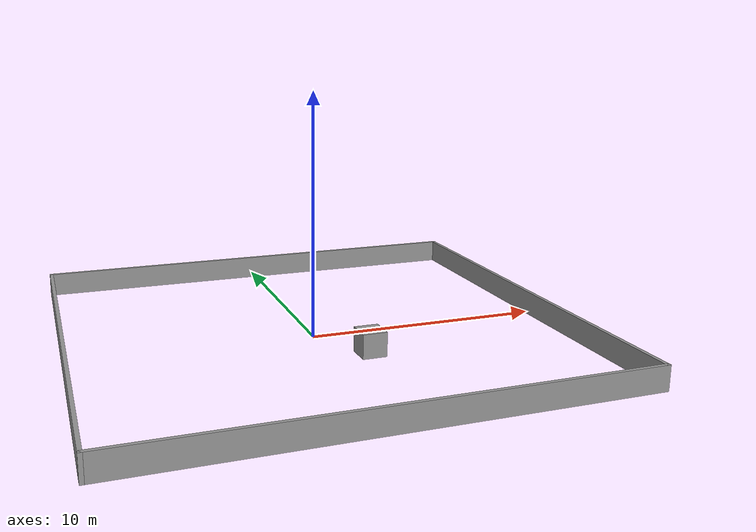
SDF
<?xml version="1.0"?>
<sdf version="1.4">
  <world name="default">
    <include>
      <uri>model://map1</uri>
    </include>

    <plugin name="ros_interface_plugin" filename="librotors_gazebo_ros_interface_plugin.so"/>
  <spherical_coordinates>
      <surface_model>EARTH_WGS84</surface_model>
      <latitude_deg>47.3667</latitude_deg>
      <longitude_deg>8.5500</longitude_deg>
      <elevation>500.0</elevation>
      <heading_deg>0</heading_deg>
    </spherical_coordinates>
    <physics type='ode'>
      <ode>
        <solver>
          <type>quick</type>
          <iters>1000</iters>
          <sor>1.3</sor>
        </solver>
        <constraints>
          <cfm>0</cfm>
          <erp>0.2</erp>
          <contact_max_correcting_vel>100</contact_max_correcting_vel>
          <contact_surface_layer>0.001</contact_surface_layer>
        </constraints>
      </ode>
      <max_step_size>0.002</max_step_size>
      <real_time_factor>1</real_time_factor>
      <real_time_update_rate>500</real_time_update_rate>
      <gravity>0 0 -9.8</gravity>
    </physics>

        <model name='unit_box_0_0'>
      <pose frame=''>1.5 -2.5 0.5 0 -0 0</pose>
      <link name='link'>
        <inertial>
          <mass>1</mass>
          <inertia>
            <ixx>0.166667</ixx>
            <ixy>0</ixy>
            <ixz>0</ixz>
            <iyy>0.166667</iyy>
            <iyz>0</iyz>
            <izz>0.166667</izz>
          </inertia>
        </inertial>
        <collision name='collision'>
          <geometry>
            <box>
              <size>1 1 1</size>
            </box>
          </geometry>
          <max_contacts>10</max_contacts>
          <surface>
            <contact>
              <ode/>
            </contact>
            <bounce/>
            <friction>
              <torsional>
                <ode/>
              </torsional>
              <ode/>
            </friction>
          </surface>
        </collision>
        <visual name='visual'>
          <geometry>
            <box>
              <size>1 1 1</size>
            </box>
          </geometry>
          <material>
            <script>
              <name>Gazebo/Grey</name>
              <uri>file://media/materials/scripts/gazebo.material</uri>
            </script>
          </material>
        </visual>
        <self_collide>0</self_collide>
        <kinematic>0</kinematic>
        <gravity>1</gravity>
      </link>
    </model>

  </world>
</sdf>

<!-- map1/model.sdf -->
<sdf version='1.6'>
  <model name='map1'>
    <pose frame=''>0.041 0.099 0 0 -0 0</pose>
    <link name='Wall_0'>
      <collision name='Wall_0_Collision'>
        <geometry>
          <box>
            <size>20 0.15 1</size>
          </box>
        </geometry>
        <pose frame=''>0 0 0.5 0 -0 0</pose>
      </collision>
      <visual name='Wall_0_Visual'>
        <pose frame=''>0 0 0.5 0 -0 0</pose>
        <geometry>
          <box>
            <size>20 0.15 1</size>
          </box>
        </geometry>
        <material>
          <script>
            <uri>file://media/materials/scripts/gazebo.material</uri>
            <name>Gazebo/Grey</name>
          </script>
          <ambient>1 1 1 1</ambient>
        </material>
        <meta>
          <layer>0</layer>
        </meta>
      </visual>
      <pose frame=''>0 9.175 0 0 -0 0</pose>
    </link>
    <link name='Wall_3'>
      <collision name='Wall_3_Collision'>
        <geometry>
          <box>
            <size>18.5 0.15 1</size>
          </box>
        </geometry>
        <pose frame=''>0 0 0.5 0 -0 0</pose>
      </collision>
      <visual name='Wall_3_Visual'>
        <pose frame=''>0 0 0.5 0 -0 0</pose>
        <geometry>
          <box>
            <size>18.5 0.15 1</size>
          </box>
        </geometry>
        <material>
          <script>
            <uri>file://media/materials/scripts/gazebo.material</uri>
            <name>Gazebo/Grey</name>
          </script>
          <ambient>1 1 1 1</ambient>
        </material>
        <meta>
          <layer>0</layer>
        </meta>
      </visual>
      <pose frame=''>9.925 0 0 0 -0 -1.5708</pose>
    </link>
    <link name='Wall_4'>
      <collision name='Wall_4_Collision'>
        <geometry>
          <box>
            <size>20 0.15 1</size>
          </box>
        </geometry>
        <pose frame=''>0 0 0.5 0 -0 0</pose>
      </collision>
      <visual name='Wall_4_Visual'>
        <pose frame=''>0 0 0.5 0 -0 0</pose>
        <geometry>
          <box>
            <size>20 0.15 1</size>
          </box>
        </geometry>
        <material>
          <script>
            <uri>file://media/materials/scripts/gazebo.material</uri>
            <name>Gazebo/Grey</name>
          </script>
          <ambient>1 1 1 1</ambient>
        </material>
        <meta>
          <layer>0</layer>
        </meta>
      </visual>
      <pose frame=''>0 -9.175 0 0 -0 3.14159</pose>
    </link>
    <link name='Wall_5'>
      <collision name='Wall_5_Collision'>
        <geometry>
          <box>
            <size>18.5 0.15 1</size>
          </box>
        </geometry>
        <pose frame=''>0 0 0.5 0 -0 0</pose>
      </collision>
      <visual name='Wall_5_Visual'>
        <pose frame=''>0 0 0.5 0 -0 0</pose>
        <geometry>
          <box>
            <size>18.5 0.15 1</size>
          </box>
        </geometry>
        <material>
          <script>
            <uri>file://media/materials/scripts/gazebo.material</uri>
            <name>Gazebo/Grey</name>
          </script>
          <ambient>1 1 1 1</ambient>
        </material>
        <meta>
          <layer>0</layer>
        </meta>
      </visual>
      <pose frame=''>-9.925 0 0 0 -0 1.5708</pose>
    </link>
    <static>1</static>
  </model>
</sdf>
